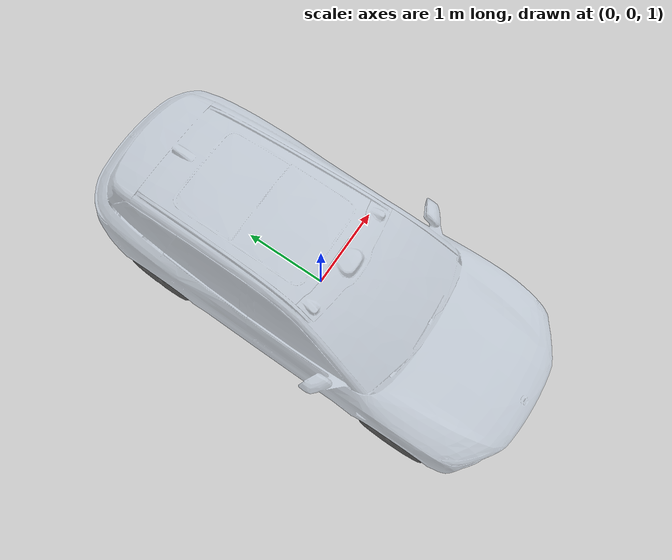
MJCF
<mujoco model="nio_es6">
  <!-- compiler: 设置内置的解析器和编译器的设置选项 -->
  <compiler angle="degree"  meshdir="stl/es6_simple/" />

  <visual>
    <!-- 可视距离 -->
    <map zfar="50"/>
    <!-- azimuth是初始视角绕Z旋转，elevation是仰角 -->
    <global azimuth="90" elevation="45"/>
  </visual>

  <option iterations="1" ls_iterations="5" timestep="0.001" integrator="Euler" gravity="0 0 -9.81">
    <flag eulerdamp="disable"/>
  </option>

  <default>
    <!-- visual: 仅用于渲染，不参与碰撞检测 -->
    <default class="visual">
      <geom type="mesh" contype="0" conaffinity="0" group="0"/>
    </default>
    <!-- collision: 用于物理碰撞检测 -->
    <default class="collision">
      <geom group="3"/>
    </default>
  </default>

  <asset>
    <material name="metal" rgba=".9 .95 .95 1"/>
    <material name="black" rgba="0 0 0 1"/>
    <material name="white" rgba="1 1 1 1"/>
    <material name="gray" rgba="0.23 0.23 0.23 0.8"/>
    <material name="blue_1" rgba="0.745 0.796 0.8588 0.6"/>

    <mesh name="es6_body"    file="es6_body.obj" />
    <mesh name="es6_tire_FL" file="es6_tire_FL.obj" />
    <mesh name="es6_tire_FR" file="es6_tire_FR.obj" />
    <mesh name="es6_tire_RL" file="es6_tire_RL.obj" />
    <mesh name="es6_tire_RR" file="es6_tire_RR.obj" />
  </asset>

  <worldbody>

    <!-- 车身根 body -->
    <body name="es6_body" pos="0 0 1">
      <!-- freejoint: 6-DOF 自由关节，车辆可在三维空间自由移动 -->
      <freejoint name="vehicle_freejoint"/>
      <!-- inertial: 质量与惯性张量，物理仿真必需 -->
      <inertial pos="0 0 0" mass="1500" diaginertia="1000 1000 1000"/>
      <!-- visual geom: 仅用于渲染 -->
      <geom class="visual" mesh="es6_body" pos="0 0 0" euler="90 0 0" material="blue_1"/>
      <!-- collision geom: 用于碰撞检测 -->
      <geom class="collision" type="box" size="1 1 0.2" pos="0 0 1"/>

      <camera name="body_camera" pos="5 5 5" mode="targetbody" target="es6_body"/>

      <body name="tire_FL" pos="0.85 -1.55 0.35">
        <joint name="joint_tire_FL_suspension" type="slide" axis="0 0 1" stiffness="30000" damping="5000" springref="-0.1"/>
        <joint name="joint_tire_FL_steering" type="hinge" axis="0 0 1" damping="0.5" frictionloss="0.1"/>
        <joint name="joint_tire_FL_roll" type="hinge" axis="1 0 0" damping="0.1" frictionloss="0.1"/>
        <inertial pos="0 0 0" mass="20" diaginertia="0.5 0.5 0.5"/>
        <geom class="visual" mesh="es6_tire_FL" pos="0 0 0" euler="0 0 0" material="gray"/>
        <geom class="collision" type="cylinder" size="0.37 0.12" pos="-0.07 0 0" euler="0 90 0"/>
      </body>

      <body name="tire_FR" pos="-1.0 -1.55 0.35">
        <joint name="joint_tire_FR_suspension" type="slide" axis="0 0 1" stiffness="30000" damping="5000" springref="-0.1"/>
        <joint name="joint_tire_FR_steering" type="hinge" axis="0 0 1" damping="0.5" frictionloss="0.1"/>
        <joint name="joint_tire_FR_roll" type="hinge" axis="1 0 0" damping="0.1" frictionloss="0.1"/>
        <inertial pos="0 0 0" mass="20" diaginertia="0.5 0.5 0.5"/>
        <geom class="visual" mesh="es6_tire_FL" pos="0 0 0" euler="0 180 0" material="gray"/>
        <geom class="collision" type="cylinder" size="0.37 0.12" pos="0.07 0 0" euler="0 90 0"/>
      </body>

      <body name="tire_RL" pos="0.85 1.38 0.35">
        <joint name="joint_tire_RL_suspension" type="slide" axis="0 0 1" stiffness="30000" damping="5000" springref="-0.1"/>
        <joint name="joint_tire_RL_steering" type="hinge" axis="0 0 1" damping="0.5" frictionloss="0.1"/>
        <joint name="joint_tire_RL_roll" type="hinge" axis="1 0 0" damping="0.1" frictionloss="0.1"/>
        <inertial pos="0 0 0" mass="20" diaginertia="0.5 0.5 0.5"/>
        <geom class="visual" mesh="es6_tire_RL" pos="0 0 0" euler="0 0 0" material="gray"/>
        <geom class="collision" type="cylinder" size="0.37 0.12" pos="-0.07 0 0" euler="0 90 0"/>
      </body>

      <body name="tire_RR" pos="-1.0 1.38 0.35">
        <joint name="joint_tire_RR_suspension" type="slide" axis="0 0 1" stiffness="30000" damping="5000" springref="-0.1"/>
        <joint name="joint_tire_RR_steering" type="hinge" axis="0 0 1" damping="0.5" frictionloss="0.1"/>
        <joint name="joint_tire_RR_roll" type="hinge" axis="1 0 0" damping="0.1" frictionloss="0.1"/>
        <inertial pos="0 0 0" mass="20" diaginertia="0.5 0.5 0.5"/>
        <geom class="visual" mesh="es6_tire_RL" pos="0 0 0" euler="90 180 0" material="gray"/>
        <geom class="collision" type="cylinder" size="0.37 0.12" pos="0.07 0 0" euler="0 90 0"/>
      </body>
    </body>
  </worldbody>

  <actuator>
    <motor name="motor_tire_FL_roll" joint="joint_tire_FL_roll" ctrllimited="false" forcelimited="false" gear="1"/>
    <motor name="motor_tire_FR_roll" joint="joint_tire_FR_roll" ctrllimited="false" forcelimited="false" gear="1"/>
    <motor name="motor_tire_RL_roll" joint="joint_tire_RL_roll" ctrllimited="false" forcelimited="false" gear="1"/>
    <motor name="motor_tire_RR_roll" joint="joint_tire_RR_roll" ctrllimited="false" forcelimited="false" gear="1"/>
  </actuator>
</mujoco>
